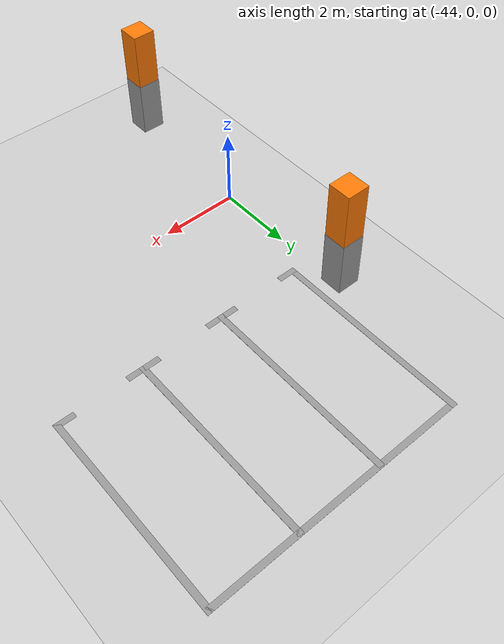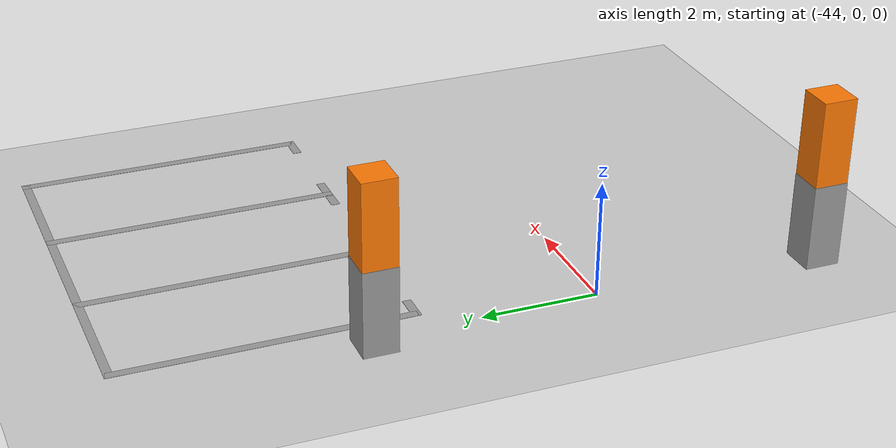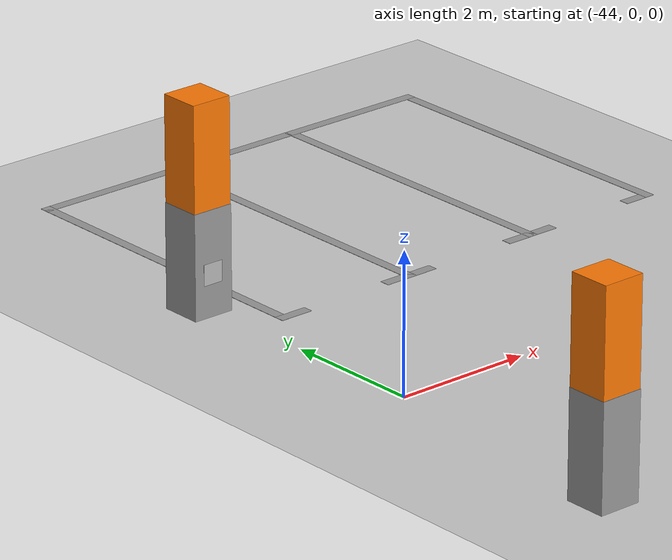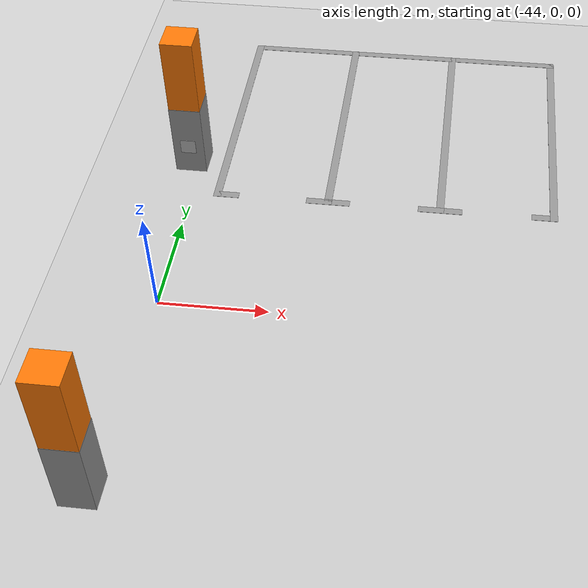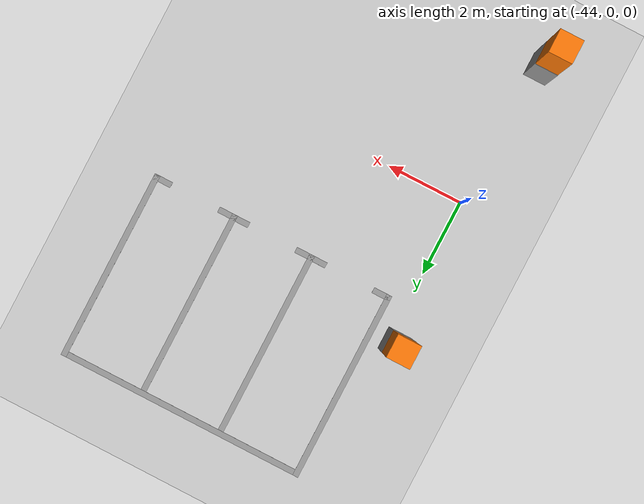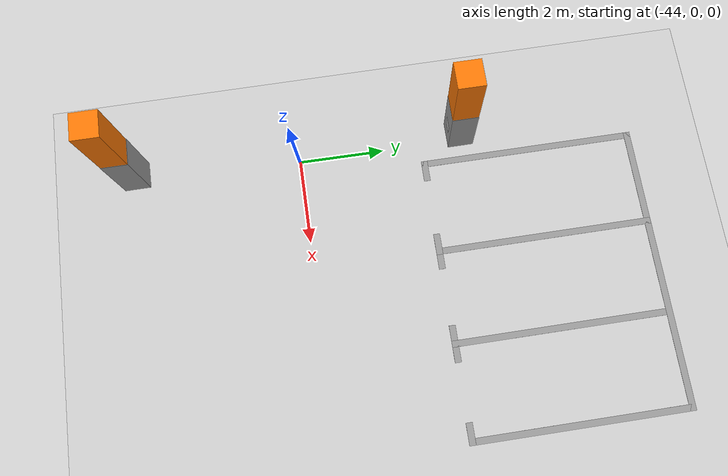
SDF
<sdf version="1.7">
 <world name="default">
  <model name="ground_plane">
   <static>1</static>
   <link name="link">
    <collision name="collision">
     <geometry><plane><normal>0 0 1</normal><size>100 100</size></plane></geometry>
     <surface><friction><ode><mu>100</mu><mu2>50</mu2></ode></friction></surface>
    </collision>
    <visual name="visual">
     <cast_shadows>0</cast_shadows>
     <geometry><plane><normal>0 0 1</normal><size>100 100</size></plane></geometry>
     <material>
      <script><uri>file://media/materials/scripts/gazebo.material</uri><name>Gazebo/Grey</name></script>
     </material>
    </visual>
   </link>
  </model>
  <model name="carport1_3_clone_clone_9">
   <pose>-40.6851 7.14476 0 0 -0 0</pose>
   <link name="Wall_105">
    <collision name="Wall_105_Collision">
     <geometry><box><size>0.61 0.6 1.5</size></box></geometry>
     <pose>0 0 0.75 0 -0 0</pose>
    </collision>
    <visual name="Wall_105_Visual">
     <pose>0 0 0.75 0 -0 0</pose>
     <geometry><box><size>0.61 0.6 1.5</size></box></geometry>
     <material>
      <script><uri>file://media/materials/scripts/gazebo.material</uri><name>Gazebo/Grey</name></script>
      <ambient>1 1 1 1</ambient>
     </material>
     <meta><layer>0</layer></meta>
    </visual>
    <pose>-3.47407 -3.2865 0 0 -0 0</pose>
   </link>
   <link name="Wall_116">
    <collision name="Wall_116_Collision">
     <geometry><box><size>5.1 0.15 0.005</size></box></geometry>
     <pose>0 0 0.0025 0 -0 0</pose>
    </collision>
    <visual name="Wall_116_Visual">
     <pose>0 0 0.0025 0 -0 0</pose>
     <geometry><box><size>5.1 0.15 0.005</size></box></geometry>
     <material>
      <script><uri>file://media/materials/scripts/gazebo.material</uri><name>Gazebo/Grey</name></script>
      <ambient>1 1 1 1</ambient>
     </material>
     <meta><layer>0</layer></meta>
    </visual>
    <pose>-2.82307 -1.7385 0 0 -0 1.5708</pose>
   </link>
   <link name="Wall_124">
    <collision name="Wall_124_Collision">
     <geometry><box><size>5.1 0.15 0.005</size></box></geometry>
     <pose>0 0 0.0025 0 -0 0</pose>
    </collision>
    <visual name="Wall_124_Visual">
     <pose>0 0 0.0025 0 -0 0</pose>
     <geometry><box><size>5.1 0.15 0.005</size></box></geometry>
     <material>
      <script><uri>file://media/materials/scripts/gazebo.material</uri><name>Gazebo/Grey</name></script>
      <ambient>1 1 1 1</ambient>
     </material>
     <meta><layer>0</layer></meta>
    </visual>
    <pose>3.70393 -1.7305 0 0 -0 1.5708</pose>
   </link>
   <link name="Wall_146">
    <collision name="Wall_146_Collision">
     <geometry><box><size>6.67711 0.15 0.005</size></box></geometry>
     <pose>0 0 0.0025 0 -0 0</pose>
    </collision>
    <visual name="Wall_146_Visual">
     <pose>0 0 0.0025 0 -0 0</pose>
     <geometry><box><size>6.67711 0.15 0.005</size></box></geometry>
     <material>
      <script><uri>file://media/materials/scripts/gazebo.material</uri><name>Gazebo/Grey</name></script>
      <ambient>1 1 1 1</ambient>
     </material>
     <meta><layer>0</layer></meta>
    </visual>
    <pose>0.440428 0.7405 0 0 -0 0.001226</pose>
   </link>
   <link name="Wall_168">
    <collision name="Wall_168_Collision">
     <geometry><box><size>5.1 0.15 0.005</size></box></geometry>
     <pose>0 0 0.0025 0 -0 0</pose>
    </collision>
    <visual name="Wall_168_Visual">
     <pose>0 0 0.0025 0 -0 0</pose>
     <geometry><box><size>5.1 0.15 0.005</size></box></geometry>
     <material>
      <script><uri>file://media/materials/scripts/gazebo.material</uri><name>Gazebo/Grey</name></script>
      <ambient>1 1 1 1</ambient>
     </material>
     <meta><layer>0</layer></meta>
    </visual>
    <pose>-0.64827 -1.73839 0 0 -0 1.57088</pose>
   </link>
   <link name="Wall_173">
    <collision name="Wall_173_Collision">
     <geometry><box><size>5.1 0.15 0.005</size></box></geometry>
     <pose>0 0 0.0025 0 -0 0</pose>
    </collision>
    <visual name="Wall_173_Visual">
     <pose>0 0 0.0025 0 -0 0</pose>
     <geometry><box><size>5.1 0.15 0.005</size></box></geometry>
     <material>
      <script><uri>file://media/materials/scripts/gazebo.material</uri><name>Gazebo/Grey</name></script>
      <ambient>1 1 1 1</ambient>
     </material>
     <meta><layer>0</layer></meta>
    </visual>
    <pose>1.52673 -1.73839 0 0 -0 1.57088</pose>
   </link>
   <link name="Wall_177">
    <collision name="Wall_177_Collision">
     <geometry><box><size>0.6 0.59 3</size></box></geometry>
     <pose>0 0 1.5 0 -0 0</pose>
    </collision>
    <visual name="Wall_177_Visual">
     <pose>0 0 1.5 0 -0 0</pose>
     <geometry><box><size>0.6 0.59 3</size></box></geometry>
     <material>
      <script><uri>file://media/materials/scripts/gazebo.material</uri><name>Gazebo/Grey</name></script>
      <ambient>0.996078 0.47451 0.0196078 1</ambient>
     </material>
     <meta><layer>0</layer></meta>
    </visual>
    <pose>-3.47407 -3.2865 0 0 -0 0</pose>
   </link>
   <link name="Wall_179">
    <collision name="Wall_179_Collision">
     <geometry><box><size>0.5 0.15 0.005</size></box></geometry>
     <pose>0 0 0.0025 0 -0 0</pose>
    </collision>
    <visual name="Wall_179_Visual">
     <pose>0 0 0.0025 0 -0 0</pose>
     <geometry><box><size>0.5 0.15 0.005</size></box></geometry>
     <material>
      <script><uri>file://media/materials/scripts/gazebo.material</uri><name>Gazebo/Grey</name></script>
      <ambient>1 1 1 1</ambient>
     </material>
     <meta><layer>0</layer></meta>
    </visual>
    <pose>-2.64807 -4.2135 0 0 -0 0</pose>
   </link>
   <link name="Wall_181">
    <collision name="Wall_181_Collision">
     <geometry><box><size>0.5 0.15 0.005</size></box></geometry>
     <pose>0 0 0.0025 0 -0 0</pose>
    </collision>
    <visual name="Wall_181_Visual">
     <pose>0 0 0.0025 0 -0 0</pose>
     <geometry><box><size>0.5 0.15 0.005</size></box></geometry>
     <material>
      <script><uri>file://media/materials/scripts/gazebo.material</uri><name>Gazebo/Grey</name></script>
      <ambient>1 1 1 1</ambient>
     </material>
     <meta><layer>0</layer></meta>
    </visual>
    <pose>-0.823072 -4.2135 0 0 -0 3.14159</pose>
   </link>
   <link name="Wall_183">
    <collision name="Wall_183_Collision">
     <geometry><box><size>0.5 0.15 0.005</size></box></geometry>
     <pose>0 0 0.0025 0 -0 0</pose>
    </collision>
    <visual name="Wall_183_Visual">
     <pose>0 0 0.0025 0 -0 0</pose>
     <geometry><box><size>0.5 0.15 0.005</size></box></geometry>
     <material>
      <script><uri>file://media/materials/scripts/gazebo.material</uri><name>Gazebo/Grey</name></script>
      <ambient>1 1 1 1</ambient>
     </material>
     <meta><layer>0</layer></meta>
    </visual>
    <pose>-0.473072 -4.2135 0 0 -0 0</pose>
   </link>
   <link name="Wall_185">
    <collision name="Wall_185_Collision">
     <geometry><box><size>0.5 0.15 0.005</size></box></geometry>
     <pose>0 0 0.0025 0 -0 0</pose>
    </collision>
    <visual name="Wall_185_Visual">
     <pose>0 0 0.0025 0 -0 0</pose>
     <geometry><box><size>0.5 0.15 0.005</size></box></geometry>
     <material>
      <script><uri>file://media/materials/scripts/gazebo.material</uri><name>Gazebo/Grey</name></script>
      <ambient>1 1 1 1</ambient>
     </material>
     <meta><layer>0</layer></meta>
    </visual>
    <pose>1.35193 -4.2135 0 0 -0 3.14159</pose>
   </link>
   <link name="Wall_187">
    <collision name="Wall_187_Collision">
     <geometry><box><size>0.5 0.15 0.005</size></box></geometry>
     <pose>0 0 0.0025 0 -0 0</pose>
    </collision>
    <visual name="Wall_187_Visual">
     <pose>0 0 0.0025 0 -0 0</pose>
     <geometry><box><size>0.5 0.15 0.005</size></box></geometry>
     <material>
      <script><uri>file://media/materials/scripts/gazebo.material</uri><name>Gazebo/Grey</name></script>
      <ambient>1 1 1 1</ambient>
     </material>
     <meta><layer>0</layer></meta>
    </visual>
    <pose>1.70193 -4.2135 0 0 -0 0</pose>
   </link>
   <link name="Wall_189">
    <collision name="Wall_189_Collision">
     <geometry><box><size>0.5 0.15 0.005</size></box></geometry>
     <pose>0 0 0.0025 0 -0 0</pose>
    </collision>
    <visual name="Wall_189_Visual">
     <pose>0 0 0.0025 0 -0 0</pose>
     <geometry><box><size>0.5 0.15 0.005</size></box></geometry>
     <material>
      <script><uri>file://media/materials/scripts/gazebo.material</uri><name>Gazebo/Grey</name></script>
      <ambient>1 1 1 1</ambient>
     </material>
     <meta><layer>0</layer></meta>
    </visual>
    <pose>3.52893 -4.2055 0 0 -0 3.14159</pose>
   </link>
   <static>1</static>
  </model>
  <model name="zhu2_clone">
   <pose>-41.5208 -1.42429 0 0 -0 0</pose>
   <link name="Wall_64">
    <collision name="Wall_64_Collision">
     <geometry><box><size>0.61 0.6 1.5</size></box></geometry>
     <pose>0 0 0.75 0 -0 0</pose>
    </collision>
    <visual name="Wall_64_Visual">
     <pose>0 0 0.75 0 -0 0</pose>
     <geometry><box><size>0.61 0.6 1.5</size></box></geometry>
     <material>
      <script><uri>file://media/materials/scripts/gazebo.material</uri><name>Gazebo/Grey</name></script>
      <ambient>1 1 1 1</ambient>
     </material>
     <meta><layer>0</layer></meta>
    </visual>
    <pose>-2.69886 -2.45796 0 0 -0 0</pose>
   </link>
   <link name="Wall_66">
    <collision name="Wall_66_Collision">
     <geometry><box><size>0.6 0.59 3</size></box></geometry>
     <pose>0 0 1.5 0 -0 0</pose>
    </collision>
    <visual name="Wall_66_Visual">
     <pose>0 0 1.5 0 -0 0</pose>
     <geometry><box><size>0.6 0.59 3</size></box></geometry>
     <material>
      <script><uri>file://media/materials/scripts/gazebo.material</uri><name>Gazebo/Grey</name></script>
      <ambient>0.996078 0.47451 0.0196078 1</ambient>
     </material>
     <meta><layer>0</layer></meta>
    </visual>
    <pose>-2.69886 -2.45796 0 0 -0 0</pose>
   </link>
   <static>1</static>
  </model>
  <model name="Apriltag36_11_00000_clone_0_clone_clone_0">
   <link name="main">
    <visual name="main_Visual">
     <geometry><box><size>0.3 0.3 0.01</size></box></geometry>
     <material>
      <script>
       <uri>model://Apriltag36_11_00000/materials/scripts</uri>
       <uri>model://Apriltag36_11_00000/materials/textures</uri>
       <name>Apriltag36_11_00000</name>
      </script>
     </material>
    </visual>
   </link>
   <static>1</static>
   <pose>-44.1681 3.56047 0.612379 1.57034 -0 0</pose>
  </model>
 </world>
</sdf>
